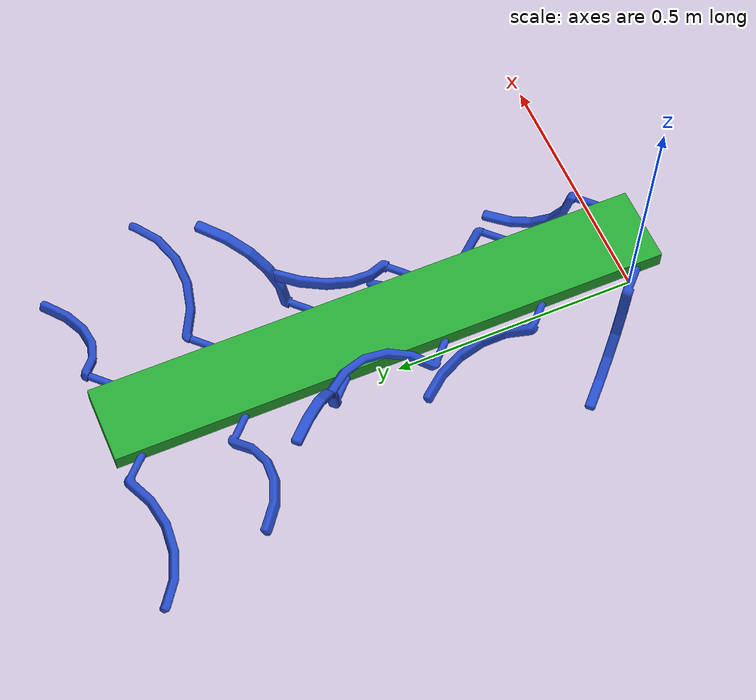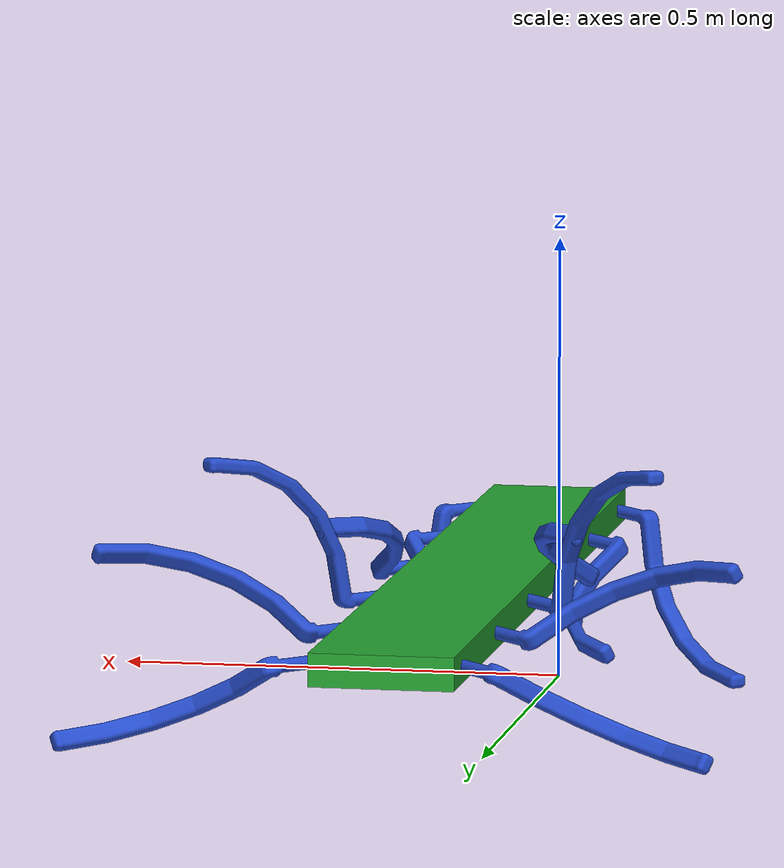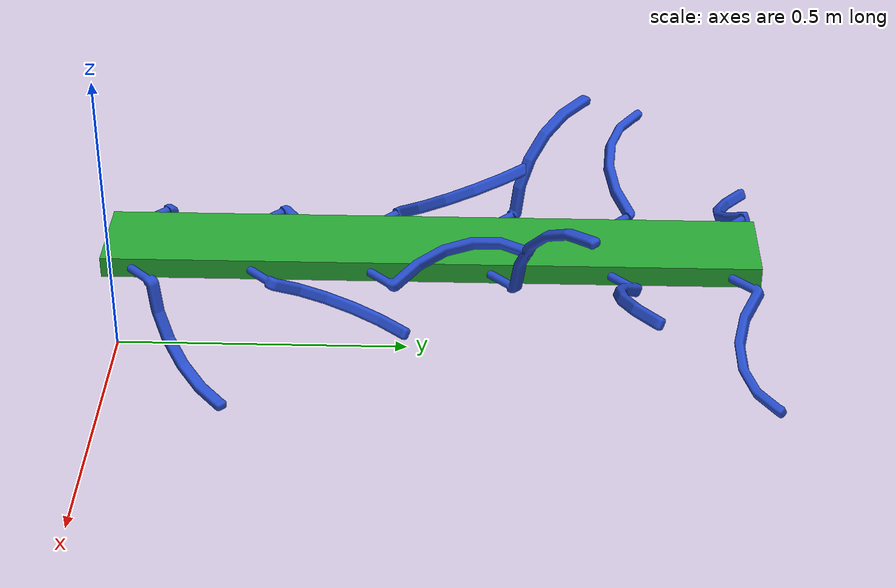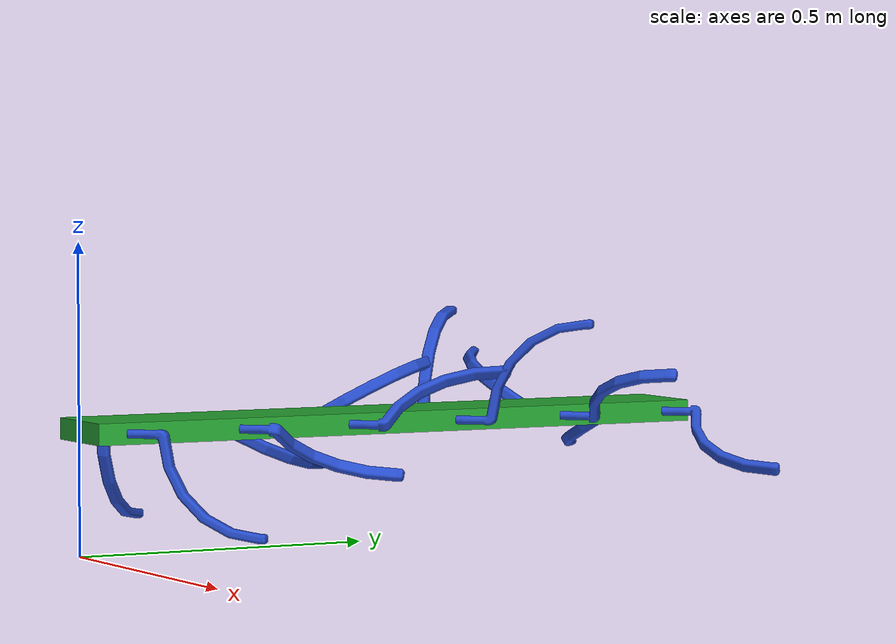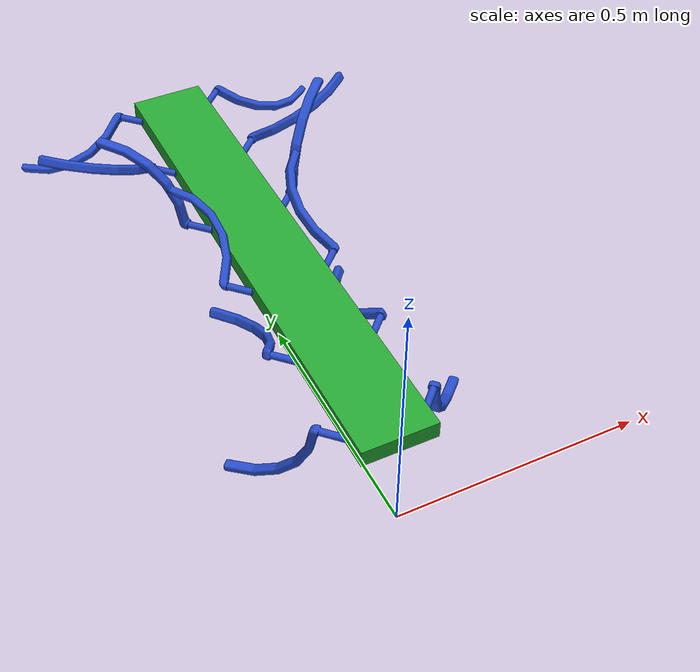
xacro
<?xml version="1.0"?>
<robot name="Strirus" xmlns:xacro="http://www.ros.org/wiki/xacro">

	<xacro:property name="deg2rad" value="${pi / 180}" />
	<xacro:property name="scale" value="1" />
	<!-- Constants for simulating -->
	<!-- number of legs need to be real number - 1 (it is from one side only)-->
	<!-- Xacro arg provides xacro.py file.xacro real_number_of_legs:=12 -->
	<xacro:arg name="real_number_of_legs" default="6" />
	<xacro:arg name="angle_between_legs" default="60" />
	<xacro:arg name="angle_between_body_leg" default="45" />
	<xacro:arg name="offset_between_legs_wave" default="0" />
	<!-- in degree -->

	<xacro:property name="real_number_of_legs" value="$(arg real_number_of_legs)" />
	<xacro:property name="number_of_legs" value="${real_number_of_legs - 1}" />
	<xacro:property name="angle_between_legs" value="$(arg angle_between_legs)" />
	<xacro:property name="angle_between_body_leg" value="$(arg angle_between_body_leg)" />
	<!-- in degree -->
	<xacro:property name="offset_between_legs_wave" value="$(arg offset_between_legs_wave)" />

	<!-- Body and leg Constants -->
	<xacro:property name="body_x_offset" value="${0}" />
	<xacro:property name="body_y_offset" value="${body_length / 2}" />
	<xacro:property name="body_z_offset" value="${leg_width + leg_height}" />
	<xacro:property name="first_hole_x_offset" value="${0.05 * scale}" />

	<xacro:property name="body_width" value="${0.3  * scale}" />
	<xacro:property name="body_height" value="${0.07  * scale}" />
	<!-- consider that body is hollow-type , 1200 is plastic density-->
	<xacro:property name="body_wall_thickness" value="${0.01  * scale}" />
	<xacro:property name="body_weight" value="${((body_width * body_length * body_height) - ((body_width - body_wall_thickness) * (body_length - body_wall_thickness) * (body_height - body_wall_thickness))) * 1200}"/>

	<xacro:property name="leg_x_offset" value="${0}" />
	<xacro:property name="leg_y_offset" value="${0}" />
	<xacro:property name="leg_z_offset" value="${0}" />

	<xacro:property name="leg_x_offset_in_body" value="${-0.000  * scale}" />
	<xacro:property name="leg_width" value="${0.02  * scale}" />
	<xacro:property name="leg_height" value="${0.18  * scale}" />
	<xacro:property name="fallibility_between_legs" value="${0.001 * scale + 2 * leg_width}" />

	<!-- Formulas -->
	<xacro:property name="dist_between_legs" value="${leg_height * sin(angle_between_legs * deg2rad) + fallibility_between_legs}" />
	<xacro:property name="body_length" value="${2 * first_hole_x_offset + (real_number_of_legs -1) * dist_between_legs}" />

	<!-- Import all Gazebo-customization elements, including Gazebo colors -->
	<xacro:include filename="$(find strirus_robot_description)/urdf/strirus_plugins.gazebo" />
	<!-- Import Rviz colors -->
	<xacro:include filename="$(find strirus_robot_description)/urdf/materials.xacro" />
	<gazebo>
		<self_collide> 1 </self_collide>
	</gazebo>
	<!-- Leg description -->
	<xacro:macro name="leg" params="prefix num side">
		<xacro:property name="angle_coeff_left" value="${(offset_between_legs_wave + angle_between_legs * num) % 360 * deg2rad}" />
		<xacro:property name="angle_coeff_right" value="${-(angle_between_legs * num) % 360 * deg2rad}" />

		<link name="leg_${prefix}_${num}">
			<inertial>
				<!-- was calcuclated in Siemens NX -->
				<mass value="${0.36 * pow(scale,3)}"/>
				<xacro:if value="${prefix == 'left'}">
					<origin rpy="${angle_coeff_left} 0 ${angle_between_body_leg * deg2rad}" xyz="${leg_x_offset + (0.1 * scale)} ${leg_y_offset + ((-2.99e-7 * cos(angle_coeff_left)  * scale) - (-0.04 * sin(angle_coeff_left) * scale))} ${leg_z_offset + ( - (-2.99e-7 * sin(angle_coeff_left)  * scale) + (-0.04 * cos(angle_coeff_left)  * scale))}"/>
				</xacro:if>
				<xacro:if value="${prefix == 'right'}">
					<origin rpy="${angle_coeff_right} 0 -${angle_between_body_leg * deg2rad}" xyz="-${leg_x_offset + (0.1 * scale)} ${-(leg_y_offset + ((-2.99e-7 * cos(angle_coeff_right) * scale) - (-0.04 * sin(angle_coeff_right) * scale)))} ${leg_z_offset + ( - (-2.99e-7 * sin(angle_coeff_right) * scale) + (-0.04 * cos(angle_coeff_right) * scale))}"/>
				</xacro:if>

				<inertia ixx="${0.001041 * pow(scale,5)}" ixy="0" ixz="${-0.00213 * pow(scale,5)}" iyy="${0.006 * pow(scale,5)}" iyz="0" izz="${0.00497  * pow(scale,5)}"/>
			</inertial>
			<collision>
				<!-- legs wave offset change only on the left side -->
				<xacro:if value="${prefix == 'left'}">
					<origin rpy="${angle_coeff_left} 0 0" xyz="${leg_x_offset} ${leg_y_offset} ${leg_z_offset}"/>
				</xacro:if>
				<xacro:if value="${prefix == 'right'}">
					<origin rpy="${angle_coeff_right} 0 ${pi}" xyz="${leg_x_offset} ${leg_y_offset} ${leg_z_offset}"/>
				</xacro:if>
				<geometry>
					<mesh filename="package://strirus_robot_description/meshes/stl/leg_strirus.stl" scale="${scale} ${scale} ${scale}"/>
				</geometry>
			</collision>

			<visual>
				<xacro:if value="${prefix == 'left'}">
					<origin rpy="${angle_coeff_left} 0 0" xyz="${leg_x_offset} ${leg_y_offset} ${leg_z_offset}"/>
				</xacro:if>
				<xacro:if value="${prefix == 'right'}">
					<origin rpy="${angle_coeff_right} 0 ${pi}" xyz="${leg_x_offset} ${leg_y_offset} ${leg_z_offset}"/>
				</xacro:if>
				<geometry>
					<mesh filename="package://strirus_robot_description/meshes/stl/leg_strirus.stl" scale="${scale} ${scale} ${scale}"/>
				</geometry>
				<material name="blue"/>
			</visual>
		</link>
		<joint name="leg_${prefix}_${num}_revolute_joint" type="revolute">
			<parent link="body"/>
			<child link="leg_${prefix}_${num}"/>
			<xacro:if value="${prefix == 'left'}">
					<origin rpy="0       0      ${angle_between_body_leg * deg2rad}" xyz="${(body_width / 4 + leg_x_offset_in_body) * side} ${first_hole_x_offset + (num) * dist_between_legs}  ${body_z_offset}"/>
				</xacro:if>
			<xacro:if value="${prefix == 'right'}">
					<origin rpy="0       0      ${-angle_between_body_leg * deg2rad}" xyz="${(body_width / 4 + leg_x_offset_in_body) * side} ${first_hole_x_offset + (num) * dist_between_legs}  ${body_z_offset}"/>
				</xacro:if>
			<axis xyz="1 0  0"/>
			<limit effort="30" lower="-1e+100" upper="1e+100" velocity="3.0"/>
			<joint_properties damping="0.0" friction="0.0" />
		</joint>

		<gazebo reference="leg_${prefix}_${num}">
			<material>Gazebo/Gray</material>
		</gazebo>

		<gazebo reference="leg_${prefix}_${num}">
			<collision>
				<surface>
					<bounce>
						<restitution_coefficient>0</restitution_coefficient>
						<threshold>100000</threshold>
					</bounce>
					<friction>
						<ode>
							<mu>0.8</mu>
							<mu2>0.8</mu2>
							<slip1>0.2 </slip1>
							<slip2>0.2 </slip2>
						</ode>
					</friction>
				</surface>
			</collision>
		</gazebo>
		<!-- This part for changing friction in first part of legs -->
		<xacro:if value="${num == 0}">
			<gazebo reference="leg_${prefix}_${num}">
				<collision>
					<surface>
						<bounce>
							<restitution_coefficient>0</restitution_coefficient>
							<threshold>100000</threshold>
						</bounce>
						<friction>
							<ode>
								<mu>0.5</mu>
								<mu2>0.5</mu2>
								<slip1>0.5 </slip1>
								<slip2>0.5 </slip2>
							</ode>
						</friction>
					</surface>
				</collision>
			</gazebo>
		</xacro:if>
	</xacro:macro>

	<!-- Body description -->
	<link name="base_link"/>
	<joint name="base_link_body_fixed" type="fixed">
		<parent link="base_link"/>
		<child link="body"/>
	</joint>
	<link name="body">
		<inertial>
			<!-- 250 value is mass density, the value is just empiric-->
			<mass value="${body_weight}"/>
			<origin rpy="0  0  0" xyz="${body_x_offset} ${body_y_offset}  ${body_z_offset}"/>
			<!-- consider that box is hollow-type (inertia *1.2)-->
			<inertia
				ixx="${1/12 * body_weight * (body_height * body_height + body_length * body_length) * 1.2 }"  ixy="0"  ixz="0"
				iyy="${1/12 * body_weight * (body_height * body_height + body_width * body_width) * 1.2 }" iyz="0"
				izz="${1/12 * body_weight * (body_length * body_length + body_width * body_width) * 1.2}" />
		</inertial>
		<collision >
			<origin rpy="0  0  0" xyz="${body_x_offset} ${body_y_offset}  ${body_z_offset}"/>
			<geometry>
				<box size="${body_width / 2} ${body_length} ${body_height / 2}"/>
			</geometry>
		</collision>
		<visual >
			<origin rpy="0  0  0" xyz="${body_x_offset} ${body_y_offset}  ${body_z_offset}"/>
			<geometry>
				<box size="${body_width / 2} ${body_length} ${body_height / 2}"/>
			</geometry>
			<material name="green"/>
		</visual>
	</link>

	<gazebo reference="body">
		<collision>
			<surface>
				<friction>
					<ode>
						<mu>1</mu>
						<mu2>1</mu2>
					</ode>
				</friction>
			</surface>
		</collision>
		<material>Gazebo/DarkYellow</material>
	</gazebo>

	<!-- create needed number of legs (is implemented by recurcion) -->
	<xacro:macro name="create_legs" params="prefix side number">
		<xacro:leg prefix="${prefix}" num="${number}" side="${side}"/>
		<xacro:if value="${number}">
			<xacro:create_legs number="${number-1}" prefix="${prefix}" side="${side}"/>
		</xacro:if>
	</xacro:macro>

	<xacro:create_legs prefix="left" side="1" number="${number_of_legs}" />
	<xacro:create_legs prefix="right" side="-1" number="${number_of_legs}" />

	<gazebo>
		<xacro:macro name="create_gearbox_joints_between_legs" params="prefix side number">
			<joint name="legs_${prefix}_0_${number}_gearbox_joint" type="gearbox">
				<parent>leg_${prefix}_${number-1}</parent>
				<child>leg_${prefix}_${number}</child>
				<gearbox_ratio>-1</gearbox_ratio>
				<gearbox_reference_body>base_link</gearbox_reference_body>
				<axis>
					<xyz>1.000000 0.000000 0.000000</xyz>
					<use_parent_model_frame>true</use_parent_model_frame>
				</axis>
				<axis2>
					<xyz>1.000000 0.000000 0.000000</xyz>
					<use_parent_model_frame>true</use_parent_model_frame>
				</axis2>
			</joint>
			<!-- num -1, because gearbox joint with 0 to 0 relation is unsatisfactory -->
			<xacro:if value="${number - 1}">
				<xacro:create_gearbox_joints_between_legs number="${number-1}" prefix="${prefix}" side="${side}"/>
			</xacro:if>
		</xacro:macro>

		<xacro:create_gearbox_joints_between_legs prefix="left" side="1" number="${number_of_legs}" />
		<xacro:create_gearbox_joints_between_legs prefix="right" side="-1" number="${number_of_legs}" />
	</gazebo>

</robot>
